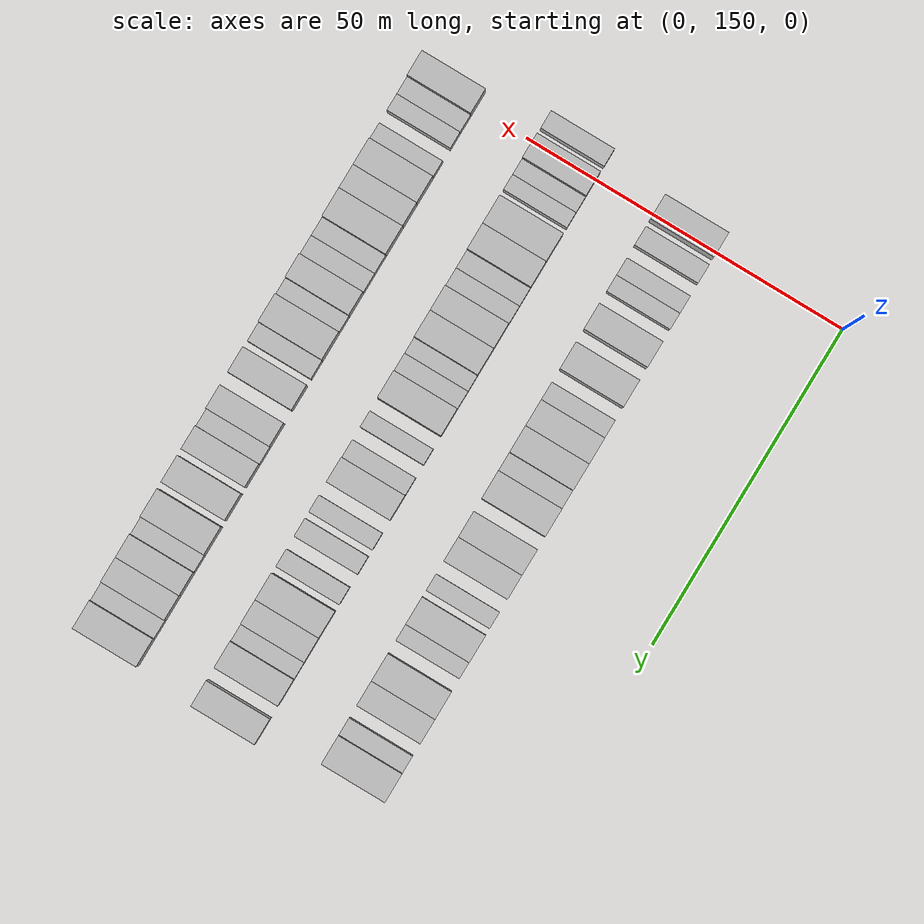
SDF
<sdf version="1.6">
 <world name="default">
  <model name="building_87">
   <static>1</static>
   <pose>25.0000 149.1867 0 0.000000 0.000000 0.000000</pose>
   <link name="link">
    <pose>0 0 4.50 0 0 0</pose>
    <collision name="collision"><geometry><box><size>10.0000 3.8759 9.0000</size></box></geometry></collision>
    <visual name="visual">
     <cast_shadows>0</cast_shadows>
     <geometry><box><size>10.0000 3.8759 9.0000</size></box></geometry>
     <material>
      <script>
       <uri>model://HANNAS_wall/materials/scripts</uri>
       <uri>model://HANNAS_wall/materials/textures</uri>
       <name>vrc/HANNAS_wall</name>
      </script>
     </material>
    </visual>
   </link>
  </model>
  <model name="building_88">
   <static>1</static>
   <pose>25.0000 153.6048 0 0.000000 0.000000 0.000000</pose>
   <link name="link">
    <pose>0 0 3.00 0 0 0</pose>
    <collision name="collision"><geometry><box><size>10.0000 2.9603 6.0000</size></box></geometry></collision>
    <visual name="visual">
     <cast_shadows>0</cast_shadows>
     <geometry><box><size>10.0000 2.9603 6.0000</size></box></geometry>
     <material>
      <script>
       <uri>model://HANNAS_wall/materials/scripts</uri>
       <uri>model://HANNAS_wall/materials/textures</uri>
       <name>vrc/HANNAS_wall</name>
      </script>
     </material>
    </visual>
   </link>
  </model>
  <model name="building_89">
   <static>1</static>
   <pose>25.0000 158.4443 0 0.000000 0.000000 0.000000</pose>
   <link name="link">
    <pose>0 0 3.00 0 0 0</pose>
    <collision name="collision"><geometry><box><size>10.0000 2.7185 6.0000</size></box></geometry></collision>
    <visual name="visual">
     <cast_shadows>0</cast_shadows>
     <geometry><box><size>10.0000 2.7185 6.0000</size></box></geometry>
     <material>
      <script>
       <uri>model://HANNAS_wall/materials/scripts</uri>
       <uri>model://HANNAS_wall/materials/textures</uri>
       <name>vrc/HANNAS_wall</name>
      </script>
     </material>
    </visual>
   </link>
  </model>
  <model name="building_90">
   <static>1</static>
   <pose>25.0000 161.0864 0 0.000000 0.000000 0.000000</pose>
   <link name="link">
    <pose>0 0 3.00 0 0 0</pose>
    <collision name="collision"><geometry><box><size>10.0000 2.5657 6.0000</size></box></geometry></collision>
    <visual name="visual">
     <cast_shadows>0</cast_shadows>
     <geometry><box><size>10.0000 2.5657 6.0000</size></box></geometry>
     <material>
      <script>
       <uri>model://HANNAS_wall/materials/scripts</uri>
       <uri>model://HANNAS_wall/materials/textures</uri>
       <name>vrc/HANNAS_wall</name>
      </script>
     </material>
    </visual>
   </link>
  </model>
  <model name="building_91">
   <static>1</static>
   <pose>25.0000 166.3972 0 0.000000 0.000000 0.000000</pose>
   <link name="link">
    <pose>0 0 4.50 0 0 0</pose>
    <collision name="collision"><geometry><box><size>10.0000 4.0559 9.0000</size></box></geometry></collision>
    <visual name="visual">
     <cast_shadows>0</cast_shadows>
     <geometry><box><size>10.0000 4.0559 9.0000</size></box></geometry>
     <material>
      <script>
       <uri>model://HANNAS_wall/materials/scripts</uri>
       <uri>model://HANNAS_wall/materials/textures</uri>
       <name>vrc/HANNAS_wall</name>
      </script>
     </material>
    </visual>
   </link>
  </model>
  <model name="building_92">
   <static>1</static>
   <pose>25.0000 172.5438 0 0.000000 0.000000 0.000000</pose>
   <link name="link">
    <pose>0 0 4.50 0 0 0</pose>
    <collision name="collision"><geometry><box><size>10.0000 4.2373 9.0000</size></box></geometry></collision>
    <visual name="visual">
     <cast_shadows>0</cast_shadows>
     <geometry><box><size>10.0000 4.2373 9.0000</size></box></geometry>
     <material>
      <script>
       <uri>model://HANNAS_wall/materials/scripts</uri>
       <uri>model://HANNAS_wall/materials/textures</uri>
       <name>vrc/HANNAS_wall</name>
      </script>
     </material>
    </visual>
   </link>
  </model>
  <model name="building_93">
   <static>1</static>
   <pose>25.0000 178.0784 0 0.000000 0.000000 0.000000</pose>
   <link name="link">
    <pose>0 0 3.00 0 0 0</pose>
    <collision name="collision"><geometry><box><size>10.0000 2.8318 6.0000</size></box></geometry></collision>
    <visual name="visual">
     <cast_shadows>0</cast_shadows>
     <geometry><box><size>10.0000 2.8318 6.0000</size></box></geometry>
     <material>
      <script>
       <uri>model://HANNAS_wall/materials/scripts</uri>
       <uri>model://HANNAS_wall/materials/textures</uri>
       <name>vrc/HANNAS_wall</name>
      </script>
     </material>
    </visual>
   </link>
  </model>
  <model name="building_94">
   <static>1</static>
   <pose>25.0000 181.5364 0 0.000000 0.000000 0.000000</pose>
   <link name="link">
    <pose>0 0 4.50 0 0 0</pose>
    <collision name="collision"><geometry><box><size>10.0000 4.0842 9.0000</size></box></geometry></collision>
    <visual name="visual">
     <cast_shadows>0</cast_shadows>
     <geometry><box><size>10.0000 4.0842 9.0000</size></box></geometry>
     <material>
      <script>
       <uri>model://HANNAS_wall/materials/scripts</uri>
       <uri>model://HANNAS_wall/materials/textures</uri>
       <name>vrc/HANNAS_wall</name>
      </script>
     </material>
    </visual>
   </link>
  </model>
  <model name="building_95">
   <static>1</static>
   <pose>25.0000 185.6593 0 0.000000 0.000000 0.000000</pose>
   <link name="link">
    <pose>0 0 4.50 0 0 0</pose>
    <collision name="collision"><geometry><box><size>10.0000 4.1616 9.0000</size></box></geometry></collision>
    <visual name="visual">
     <cast_shadows>0</cast_shadows>
     <geometry><box><size>10.0000 4.1616 9.0000</size></box></geometry>
     <material>
      <script>
       <uri>model://HANNAS_wall/materials/scripts</uri>
       <uri>model://HANNAS_wall/materials/textures</uri>
       <name>vrc/HANNAS_wall</name>
      </script>
     </material>
    </visual>
   </link>
  </model>
  <model name="building_96">
   <static>1</static>
   <pose>25.0000 189.1794 0 0.000000 0.000000 0.000000</pose>
   <link name="link">
    <pose>0 0 3.00 0 0 0</pose>
    <collision name="collision"><geometry><box><size>10.0000 2.8786 6.0000</size></box></geometry></collision>
    <visual name="visual">
     <cast_shadows>0</cast_shadows>
     <geometry><box><size>10.0000 2.8786 6.0000</size></box></geometry>
     <material>
      <script>
       <uri>model://HANNAS_wall/materials/scripts</uri>
       <uri>model://HANNAS_wall/materials/textures</uri>
       <name>vrc/HANNAS_wall</name>
      </script>
     </material>
    </visual>
   </link>
  </model>
  <model name="building_97">
   <static>1</static>
   <pose>25.0000 192.8146 0 0.000000 0.000000 0.000000</pose>
   <link name="link">
    <pose>0 0 4.50 0 0 0</pose>
    <collision name="collision"><geometry><box><size>10.0000 4.3917 9.0000</size></box></geometry></collision>
    <visual name="visual">
     <cast_shadows>0</cast_shadows>
     <geometry><box><size>10.0000 4.3917 9.0000</size></box></geometry>
     <material>
      <script>
       <uri>model://HANNAS_wall/materials/scripts</uri>
       <uri>model://HANNAS_wall/materials/textures</uri>
       <name>vrc/HANNAS_wall</name>
      </script>
     </material>
    </visual>
   </link>
  </model>
  <model name="building_98">
   <static>1</static>
   <pose>25.0000 199.0348 0 0.000000 0.000000 0.000000</pose>
   <link name="link">
    <pose>0 0 4.50 0 0 0</pose>
    <collision name="collision"><geometry><box><size>10.0000 4.0488 9.0000</size></box></geometry></collision>
    <visual name="visual">
     <cast_shadows>0</cast_shadows>
     <geometry><box><size>10.0000 4.0488 9.0000</size></box></geometry>
     <material>
      <script>
       <uri>model://HANNAS_wall/materials/scripts</uri>
       <uri>model://HANNAS_wall/materials/textures</uri>
       <name>vrc/HANNAS_wall</name>
      </script>
     </material>
    </visual>
   </link>
  </model>
  <model name="building_99">
   <static>1</static>
   <pose>25.0000 202.9499 0 0.000000 0.000000 0.000000</pose>
   <link name="link">
    <pose>0 0 4.50 0 0 0</pose>
    <collision name="collision"><geometry><box><size>10.0000 3.7814 9.0000</size></box></geometry></collision>
    <visual name="visual">
     <cast_shadows>0</cast_shadows>
     <geometry><box><size>10.0000 3.7814 9.0000</size></box></geometry>
     <material>
      <script>
       <uri>model://HANNAS_wall/materials/scripts</uri>
       <uri>model://HANNAS_wall/materials/textures</uri>
       <name>vrc/HANNAS_wall</name>
      </script>
     </material>
    </visual>
   </link>
  </model>
  <model name="building_100">
   <static>1</static>
   <pose>25.0000 208.1453 0 0.000000 0.000000 0.000000</pose>
   <link name="link">
    <pose>0 0 3.00 0 0 0</pose>
    <collision name="collision"><geometry><box><size>10.0000 2.6092 6.0000</size></box></geometry></collision>
    <visual name="visual">
     <cast_shadows>0</cast_shadows>
     <geometry><box><size>10.0000 2.6092 6.0000</size></box></geometry>
     <material>
      <script>
       <uri>model://HANNAS_wall/materials/scripts</uri>
       <uri>model://HANNAS_wall/materials/textures</uri>
       <name>vrc/HANNAS_wall</name>
      </script>
     </material>
    </visual>
   </link>
  </model>
  <model name="building_101">
   <static>1</static>
   <pose>25.0000 212.5987 0 0.000000 0.000000 0.000000</pose>
   <link name="link">
    <pose>0 0 4.50 0 0 0</pose>
    <collision name="collision"><geometry><box><size>10.0000 4.2976 9.0000</size></box></geometry></collision>
    <visual name="visual">
     <cast_shadows>0</cast_shadows>
     <geometry><box><size>10.0000 4.2976 9.0000</size></box></geometry>
     <material>
      <script>
       <uri>model://HANNAS_wall/materials/scripts</uri>
       <uri>model://HANNAS_wall/materials/textures</uri>
       <name>vrc/HANNAS_wall</name>
      </script>
     </material>
    </visual>
   </link>
  </model>
  <model name="building_102">
   <static>1</static>
   <pose>25.0000 216.0351 0 0.000000 0.000000 0.000000</pose>
   <link name="link">
    <pose>0 0 3.00 0 0 0</pose>
    <collision name="collision"><geometry><box><size>10.0000 2.5752 6.0000</size></box></geometry></collision>
    <visual name="visual">
     <cast_shadows>0</cast_shadows>
     <geometry><box><size>10.0000 2.5752 6.0000</size></box></geometry>
     <material>
      <script>
       <uri>model://HANNAS_wall/materials/scripts</uri>
       <uri>model://HANNAS_wall/materials/textures</uri>
       <name>vrc/HANNAS_wall</name>
      </script>
     </material>
    </visual>
   </link>
  </model>
  <model name="building_103">
   <static>1</static>
   <pose>25.0000 221.4794 0 0.000000 0.000000 0.000000</pose>
   <link name="link">
    <pose>0 0 4.50 0 0 0</pose>
    <collision name="collision"><geometry><box><size>10.0000 4.3134 9.0000</size></box></geometry></collision>
    <visual name="visual">
     <cast_shadows>0</cast_shadows>
     <geometry><box><size>10.0000 4.3134 9.0000</size></box></geometry>
     <material>
      <script>
       <uri>model://HANNAS_wall/materials/scripts</uri>
       <uri>model://HANNAS_wall/materials/textures</uri>
       <name>vrc/HANNAS_wall</name>
      </script>
     </material>
    </visual>
   </link>
  </model>
  <model name="building_104">
   <static>1</static>
   <pose>25.0000 225.5553 0 0.000000 0.000000 0.000000</pose>
   <link name="link">
    <pose>0 0 4.50 0 0 0</pose>
    <collision name="collision"><geometry><box><size>10.0000 3.8384 9.0000</size></box></geometry></collision>
    <visual name="visual">
     <cast_shadows>0</cast_shadows>
     <geometry><box><size>10.0000 3.8384 9.0000</size></box></geometry>
     <material>
      <script>
       <uri>model://HANNAS_wall/materials/scripts</uri>
       <uri>model://HANNAS_wall/materials/textures</uri>
       <name>vrc/HANNAS_wall</name>
      </script>
     </material>
    </visual>
   </link>
  </model>
  <model name="building_105">
   <static>1</static>
   <pose>25.0000 230.8181 0 0.000000 0.000000 0.000000</pose>
   <link name="link">
    <pose>0 0 3.00 0 0 0</pose>
    <collision name="collision"><geometry><box><size>10.0000 2.6873 6.0000</size></box></geometry></collision>
    <visual name="visual">
     <cast_shadows>0</cast_shadows>
     <geometry><box><size>10.0000 2.6873 6.0000</size></box></geometry>
     <material>
      <script>
       <uri>model://HANNAS_wall/materials/scripts</uri>
       <uri>model://HANNAS_wall/materials/textures</uri>
       <name>vrc/HANNAS_wall</name>
      </script>
     </material>
    </visual>
   </link>
  </model>
  <model name="building_106">
   <static>1</static>
   <pose>25.0000 234.4107 0 0.000000 0.000000 0.000000</pose>
   <link name="link">
    <pose>0 0 4.50 0 0 0</pose>
    <collision name="collision"><geometry><box><size>10.0000 4.4979 9.0000</size></box></geometry></collision>
    <visual name="visual">
     <cast_shadows>0</cast_shadows>
     <geometry><box><size>10.0000 4.4979 9.0000</size></box></geometry>
     <material>
      <script>
       <uri>model://HANNAS_wall/materials/scripts</uri>
       <uri>model://HANNAS_wall/materials/textures</uri>
       <name>vrc/HANNAS_wall</name>
      </script>
     </material>
    </visual>
   </link>
  </model>
  <model name="building_205">
   <static>1</static>
   <pose>44.0000 146.7441 0 0.000000 0.000000 0.000000</pose>
   <link name="link">
    <pose>0 0 3.00 0 0 0</pose>
    <collision name="collision"><geometry><box><size>10.0000 2.7660 6.0000</size></box></geometry></collision>
    <visual name="visual">
     <cast_shadows>0</cast_shadows>
     <geometry><box><size>10.0000 2.7660 6.0000</size></box></geometry>
     <material>
      <script>
       <uri>model://HANNAS_wall/materials/scripts</uri>
       <uri>model://HANNAS_wall/materials/textures</uri>
       <name>vrc/HANNAS_wall</name>
      </script>
     </material>
    </visual>
   </link>
  </model>
  <model name="building_206">
   <static>1</static>
   <pose>44.0000 151.0318 0 0.000000 0.000000 0.000000</pose>
   <link name="link">
    <pose>0 0 4.50 0 0 0</pose>
    <collision name="collision"><geometry><box><size>10.0000 3.8094 9.0000</size></box></geometry></collision>
    <visual name="visual">
     <cast_shadows>0</cast_shadows>
     <geometry><box><size>10.0000 3.8094 9.0000</size></box></geometry>
     <material>
      <script>
       <uri>model://HANNAS_wall/materials/scripts</uri>
       <uri>model://HANNAS_wall/materials/textures</uri>
       <name>vrc/HANNAS_wall</name>
      </script>
     </material>
    </visual>
   </link>
  </model>
  <model name="building_207">
   <static>1</static>
   <pose>44.0000 154.1809 0 0.000000 0.000000 0.000000</pose>
   <link name="link">
    <pose>0 0 3.00 0 0 0</pose>
    <collision name="collision"><geometry><box><size>10.0000 2.4887 6.0000</size></box></geometry></collision>
    <visual name="visual">
     <cast_shadows>0</cast_shadows>
     <geometry><box><size>10.0000 2.4887 6.0000</size></box></geometry>
     <material>
      <script>
       <uri>model://HANNAS_wall/materials/scripts</uri>
       <uri>model://HANNAS_wall/materials/textures</uri>
       <name>vrc/HANNAS_wall</name>
      </script>
     </material>
    </visual>
   </link>
  </model>
  <model name="building_208">
   <static>1</static>
   <pose>44.0000 156.6257 0 0.000000 0.000000 0.000000</pose>
   <link name="link">
    <pose>0 0 3.00 0 0 0</pose>
    <collision name="collision"><geometry><box><size>10.0000 2.4009 6.0000</size></box></geometry></collision>
    <visual name="visual">
     <cast_shadows>0</cast_shadows>
     <geometry><box><size>10.0000 2.4009 6.0000</size></box></geometry>
     <material>
      <script>
       <uri>model://HANNAS_wall/materials/scripts</uri>
       <uri>model://HANNAS_wall/materials/textures</uri>
       <name>vrc/HANNAS_wall</name>
      </script>
     </material>
    </visual>
   </link>
  </model>
  <model name="building_209">
   <static>1</static>
   <pose>44.0000 161.0472 0 0.000000 0.000000 0.000000</pose>
   <link name="link">
    <pose>0 0 4.50 0 0 0</pose>
    <collision name="collision"><geometry><box><size>10.0000 4.4419 9.0000</size></box></geometry></collision>
    <visual name="visual">
     <cast_shadows>0</cast_shadows>
     <geometry><box><size>10.0000 4.4419 9.0000</size></box></geometry>
     <material>
      <script>
       <uri>model://HANNAS_wall/materials/scripts</uri>
       <uri>model://HANNAS_wall/materials/textures</uri>
       <name>vrc/HANNAS_wall</name>
      </script>
     </material>
    </visual>
   </link>
  </model>
  <model name="building_210">
   <static>1</static>
   <pose>44.0000 165.2892 0 0.000000 0.000000 0.000000</pose>
   <link name="link">
    <pose>0 0 4.50 0 0 0</pose>
    <collision name="collision"><geometry><box><size>10.0000 4.0421 9.0000</size></box></geometry></collision>
    <visual name="visual">
     <cast_shadows>0</cast_shadows>
     <geometry><box><size>10.0000 4.0421 9.0000</size></box></geometry>
     <material>
      <script>
       <uri>model://HANNAS_wall/materials/scripts</uri>
       <uri>model://HANNAS_wall/materials/textures</uri>
       <name>vrc/HANNAS_wall</name>
      </script>
     </material>
    </visual>
   </link>
  </model>
  <model name="building_211">
   <static>1</static>
   <pose>44.0000 168.7323 0 0.000000 0.000000 0.000000</pose>
   <link name="link">
    <pose>0 0 3.00 0 0 0</pose>
    <collision name="collision"><geometry><box><size>10.0000 2.8443 6.0000</size></box></geometry></collision>
    <visual name="visual">
     <cast_shadows>0</cast_shadows>
     <geometry><box><size>10.0000 2.8443 6.0000</size></box></geometry>
     <material>
      <script>
       <uri>model://HANNAS_wall/materials/scripts</uri>
       <uri>model://HANNAS_wall/materials/textures</uri>
       <name>vrc/HANNAS_wall</name>
      </script>
     </material>
    </visual>
   </link>
  </model>
  <model name="building_212">
   <static>1</static>
   <pose>44.0000 171.5797 0 0.000000 0.000000 0.000000</pose>
   <link name="link">
    <pose>0 0 3.00 0 0 0</pose>
    <collision name="collision"><geometry><box><size>10.0000 2.8506 6.0000</size></box></geometry></collision>
    <visual name="visual">
     <cast_shadows>0</cast_shadows>
     <geometry><box><size>10.0000 2.8506 6.0000</size></box></geometry>
     <material>
      <script>
       <uri>model://HANNAS_wall/materials/scripts</uri>
       <uri>model://HANNAS_wall/materials/textures</uri>
       <name>vrc/HANNAS_wall</name>
      </script>
     </material>
    </visual>
   </link>
  </model>
  <model name="building_213">
   <static>1</static>
   <pose>44.0000 174.9610 0 0.000000 0.000000 0.000000</pose>
   <link name="link">
    <pose>0 0 4.50 0 0 0</pose>
    <collision name="collision"><geometry><box><size>10.0000 3.9120 9.0000</size></box></geometry></collision>
    <visual name="visual">
     <cast_shadows>0</cast_shadows>
     <geometry><box><size>10.0000 3.9120 9.0000</size></box></geometry>
     <material>
      <script>
       <uri>model://HANNAS_wall/materials/scripts</uri>
       <uri>model://HANNAS_wall/materials/textures</uri>
       <name>vrc/HANNAS_wall</name>
      </script>
     </material>
    </visual>
   </link>
  </model>
  <model name="building_214">
   <static>1</static>
   <pose>44.0000 179.0112 0 0.000000 0.000000 0.000000</pose>
   <link name="link">
    <pose>0 0 4.50 0 0 0</pose>
    <collision name="collision"><geometry><box><size>10.0000 4.1883 9.0000</size></box></geometry></collision>
    <visual name="visual">
     <cast_shadows>0</cast_shadows>
     <geometry><box><size>10.0000 4.1883 9.0000</size></box></geometry>
     <material>
      <script>
       <uri>model://HANNAS_wall/materials/scripts</uri>
       <uri>model://HANNAS_wall/materials/textures</uri>
       <name>vrc/HANNAS_wall</name>
      </script>
     </material>
    </visual>
   </link>
  </model>
  <model name="building_215">
   <static>1</static>
   <pose>44.0000 182.3445 0 0.000000 0.000000 0.000000</pose>
   <link name="link">
    <pose>0 0 3.00 0 0 0</pose>
    <collision name="collision"><geometry><box><size>10.0000 2.4782 6.0000</size></box></geometry></collision>
    <visual name="visual">
     <cast_shadows>0</cast_shadows>
     <geometry><box><size>10.0000 2.4782 6.0000</size></box></geometry>
     <material>
      <script>
       <uri>model://HANNAS_wall/materials/scripts</uri>
       <uri>model://HANNAS_wall/materials/textures</uri>
       <name>vrc/HANNAS_wall</name>
      </script>
     </material>
    </visual>
   </link>
  </model>
  <model name="building_216">
   <static>1</static>
   <pose>44.0000 184.9799 0 0.000000 0.000000 0.000000</pose>
   <link name="link">
    <pose>0 0 3.00 0 0 0</pose>
    <collision name="collision"><geometry><box><size>10.0000 2.7926 6.0000</size></box></geometry></collision>
    <visual name="visual">
     <cast_shadows>0</cast_shadows>
     <geometry><box><size>10.0000 2.7926 6.0000</size></box></geometry>
     <material>
      <script>
       <uri>model://HANNAS_wall/materials/scripts</uri>
       <uri>model://HANNAS_wall/materials/textures</uri>
       <name>vrc/HANNAS_wall</name>
      </script>
     </material>
    </visual>
   </link>
  </model>
  <model name="building_217">
   <static>1</static>
   <pose>44.0000 188.5200 0 0.000000 0.000000 0.000000</pose>
   <link name="link">
    <pose>0 0 4.50 0 0 0</pose>
    <collision name="collision"><geometry><box><size>10.0000 4.2876 9.0000</size></box></geometry></collision>
    <visual name="visual">
     <cast_shadows>0</cast_shadows>
     <geometry><box><size>10.0000 4.2876 9.0000</size></box></geometry>
     <material>
      <script>
       <uri>model://HANNAS_wall/materials/scripts</uri>
       <uri>model://HANNAS_wall/materials/textures</uri>
       <name>vrc/HANNAS_wall</name>
      </script>
     </material>
    </visual>
   </link>
  </model>
  <model name="building_218">
   <static>1</static>
   <pose>44.0000 193.9305 0 0.000000 0.000000 0.000000</pose>
   <link name="link">
    <pose>0 0 3.00 0 0 0</pose>
    <collision name="collision"><geometry><box><size>10.0000 2.5333 6.0000</size></box></geometry></collision>
    <visual name="visual">
     <cast_shadows>0</cast_shadows>
     <geometry><box><size>10.0000 2.5333 6.0000</size></box></geometry>
     <material>
      <script>
       <uri>model://HANNAS_wall/materials/scripts</uri>
       <uri>model://HANNAS_wall/materials/textures</uri>
       <name>vrc/HANNAS_wall</name>
      </script>
     </material>
    </visual>
   </link>
  </model>
  <model name="building_219">
   <static>1</static>
   <pose>44.0000 198.5917 0 0.000000 0.000000 0.000000</pose>
   <link name="link">
    <pose>0 0 3.00 0 0 0</pose>
    <collision name="collision"><geometry><box><size>10.0000 2.7890 6.0000</size></box></geometry></collision>
    <visual name="visual">
     <cast_shadows>0</cast_shadows>
     <geometry><box><size>10.0000 2.7890 6.0000</size></box></geometry>
     <material>
      <script>
       <uri>model://HANNAS_wall/materials/scripts</uri>
       <uri>model://HANNAS_wall/materials/textures</uri>
       <name>vrc/HANNAS_wall</name>
      </script>
     </material>
    </visual>
   </link>
  </model>
  <model name="building_220">
   <static>1</static>
   <pose>44.0000 201.9425 0 0.000000 0.000000 0.000000</pose>
   <link name="link">
    <pose>0 0 4.50 0 0 0</pose>
    <collision name="collision"><geometry><box><size>10.0000 3.9126 9.0000</size></box></geometry></collision>
    <visual name="visual">
     <cast_shadows>0</cast_shadows>
     <geometry><box><size>10.0000 3.9126 9.0000</size></box></geometry>
     <material>
      <script>
       <uri>model://HANNAS_wall/materials/scripts</uri>
       <uri>model://HANNAS_wall/materials/textures</uri>
       <name>vrc/HANNAS_wall</name>
      </script>
     </material>
    </visual>
   </link>
  </model>
  <model name="building_221">
   <static>1</static>
   <pose>44.0000 207.2332 0 0.000000 0.000000 0.000000</pose>
   <link name="link">
    <pose>0 0 3.00 0 0 0</pose>
    <collision name="collision"><geometry><box><size>10.0000 2.6689 6.0000</size></box></geometry></collision>
    <visual name="visual">
     <cast_shadows>0</cast_shadows>
     <geometry><box><size>10.0000 2.6689 6.0000</size></box></geometry>
     <material>
      <script>
       <uri>model://HANNAS_wall/materials/scripts</uri>
       <uri>model://HANNAS_wall/materials/textures</uri>
       <name>vrc/HANNAS_wall</name>
      </script>
     </material>
    </visual>
   </link>
  </model>
  <model name="building_222">
   <static>1</static>
   <pose>44.0000 210.9874 0 0.000000 0.000000 0.000000</pose>
   <link name="link">
    <pose>0 0 3.00 0 0 0</pose>
    <collision name="collision"><geometry><box><size>10.0000 2.8394 6.0000</size></box></geometry></collision>
    <visual name="visual">
     <cast_shadows>0</cast_shadows>
     <geometry><box><size>10.0000 2.8394 6.0000</size></box></geometry>
     <material>
      <script>
       <uri>model://HANNAS_wall/materials/scripts</uri>
       <uri>model://HANNAS_wall/materials/textures</uri>
       <name>vrc/HANNAS_wall</name>
      </script>
     </material>
    </visual>
   </link>
  </model>
  <model name="building_223">
   <static>1</static>
   <pose>44.0000 215.7879 0 0.000000 0.000000 0.000000</pose>
   <link name="link">
    <pose>0 0 3.00 0 0 0</pose>
    <collision name="collision"><geometry><box><size>10.0000 2.7617 6.0000</size></box></geometry></collision>
    <visual name="visual">
     <cast_shadows>0</cast_shadows>
     <geometry><box><size>10.0000 2.7617 6.0000</size></box></geometry>
     <material>
      <script>
       <uri>model://HANNAS_wall/materials/scripts</uri>
       <uri>model://HANNAS_wall/materials/textures</uri>
       <name>vrc/HANNAS_wall</name>
      </script>
     </material>
    </visual>
   </link>
  </model>
  <model name="building_224">
   <static>1</static>
   <pose>44.0000 220.2713 0 0.000000 0.000000 0.000000</pose>
   <link name="link">
    <pose>0 0 4.50 0 0 0</pose>
    <collision name="collision"><geometry><box><size>10.0000 4.2050 9.0000</size></box></geometry></collision>
    <visual name="visual">
     <cast_shadows>0</cast_shadows>
     <geometry><box><size>10.0000 4.2050 9.0000</size></box></geometry>
     <material>
      <script>
       <uri>model://HANNAS_wall/materials/scripts</uri>
       <uri>model://HANNAS_wall/materials/textures</uri>
       <name>vrc/HANNAS_wall</name>
      </script>
     </material>
    </visual>
   </link>
  </model>
  <model name="building_225">
   <static>1</static>
   <pose>44.0000 224.2787 0 0.000000 0.000000 0.000000</pose>
   <link name="link">
    <pose>0 0 4.50 0 0 0</pose>
    <collision name="collision"><geometry><box><size>10.0000 3.8098 9.0000</size></box></geometry></collision>
    <visual name="visual">
     <cast_shadows>0</cast_shadows>
     <geometry><box><size>10.0000 3.8098 9.0000</size></box></geometry>
     <material>
      <script>
       <uri>model://HANNAS_wall/materials/scripts</uri>
       <uri>model://HANNAS_wall/materials/textures</uri>
       <name>vrc/HANNAS_wall</name>
      </script>
     </material>
    </visual>
   </link>
  </model>
  <model name="building_226">
   <static>1</static>
   <pose>44.0000 227.5212 0 0.000000 0.000000 0.000000</pose>
   <link name="link">
    <pose>0 0 3.00 0 0 0</pose>
    <collision name="collision"><geometry><box><size>10.0000 2.6750 6.0000</size></box></geometry></collision>
    <visual name="visual">
     <cast_shadows>0</cast_shadows>
     <geometry><box><size>10.0000 2.6750 6.0000</size></box></geometry>
     <material>
      <script>
       <uri>model://HANNAS_wall/materials/scripts</uri>
       <uri>model://HANNAS_wall/materials/textures</uri>
       <name>vrc/HANNAS_wall</name>
      </script>
     </material>
    </visual>
   </link>
  </model>
  <model name="building_227">
   <static>1</static>
   <pose>44.0000 230.9414 0 0.000000 0.000000 0.000000</pose>
   <link name="link">
    <pose>0 0 4.50 0 0 0</pose>
    <collision name="collision"><geometry><box><size>10.0000 4.1654 9.0000</size></box></geometry></collision>
    <visual name="visual">
     <cast_shadows>0</cast_shadows>
     <geometry><box><size>10.0000 4.1654 9.0000</size></box></geometry>
     <material>
      <script>
       <uri>model://HANNAS_wall/materials/scripts</uri>
       <uri>model://HANNAS_wall/materials/textures</uri>
       <name>vrc/HANNAS_wall</name>
      </script>
     </material>
    </visual>
   </link>
  </model>
  <model name="building_228">
   <static>1</static>
   <pose>44.0000 237.0414 0 0.000000 0.000000 0.000000</pose>
   <link name="link">
    <pose>0 0 4.50 0 0 0</pose>
    <collision name="collision"><geometry><box><size>10.0000 4.0348 9.0000</size></box></geometry></collision>
    <visual name="visual">
     <cast_shadows>0</cast_shadows>
     <geometry><box><size>10.0000 4.0348 9.0000</size></box></geometry>
     <material>
      <script>
       <uri>model://HANNAS_wall/materials/scripts</uri>
       <uri>model://HANNAS_wall/materials/textures</uri>
       <name>vrc/HANNAS_wall</name>
      </script>
     </material>
    </visual>
   </link>
  </model>
  <model name="building_316">
   <static>1</static>
   <pose>63.0000 149.5399 0 0.000000 0.000000 0.000000</pose>
   <link name="link">
    <pose>0 0 4.50 0 0 0</pose>
    <collision name="collision"><geometry><box><size>10.0000 3.8835 9.0000</size></box></geometry></collision>
    <visual name="visual">
     <cast_shadows>0</cast_shadows>
     <geometry><box><size>10.0000 3.8835 9.0000</size></box></geometry>
     <material>
      <script>
       <uri>model://HANNAS_wall/materials/scripts</uri>
       <uri>model://HANNAS_wall/materials/textures</uri>
       <name>vrc/HANNAS_wall</name>
      </script>
     </material>
    </visual>
   </link>
  </model>
  <model name="building_317">
   <static>1</static>
   <pose>63.0000 152.8363 0 0.000000 0.000000 0.000000</pose>
   <link name="link">
    <pose>0 0 3.00 0 0 0</pose>
    <collision name="collision"><geometry><box><size>10.0000 2.7093 6.0000</size></box></geometry></collision>
    <visual name="visual">
     <cast_shadows>0</cast_shadows>
     <geometry><box><size>10.0000 2.7093 6.0000</size></box></geometry>
     <material>
      <script>
       <uri>model://HANNAS_wall/materials/scripts</uri>
       <uri>model://HANNAS_wall/materials/textures</uri>
       <name>vrc/HANNAS_wall</name>
      </script>
     </material>
    </visual>
   </link>
  </model>
  <model name="building_318">
   <static>1</static>
   <pose>63.0000 155.4752 0 0.000000 0.000000 0.000000</pose>
   <link name="link">
    <pose>0 0 3.00 0 0 0</pose>
    <collision name="collision"><geometry><box><size>10.0000 2.5686 6.0000</size></box></geometry></collision>
    <visual name="visual">
     <cast_shadows>0</cast_shadows>
     <geometry><box><size>10.0000 2.5686 6.0000</size></box></geometry>
     <material>
      <script>
       <uri>model://HANNAS_wall/materials/scripts</uri>
       <uri>model://HANNAS_wall/materials/textures</uri>
       <name>vrc/HANNAS_wall</name>
      </script>
     </material>
    </visual>
   </link>
  </model>
  <model name="building_319">
   <static>1</static>
   <pose>63.0000 160.0411 0 0.000000 0.000000 0.000000</pose>
   <link name="link">
    <pose>0 0 3.00 0 0 0</pose>
    <collision name="collision"><geometry><box><size>10.0000 2.5631 6.0000</size></box></geometry></collision>
    <visual name="visual">
     <cast_shadows>0</cast_shadows>
     <geometry><box><size>10.0000 2.5631 6.0000</size></box></geometry>
     <material>
      <script>
       <uri>model://HANNAS_wall/materials/scripts</uri>
       <uri>model://HANNAS_wall/materials/textures</uri>
       <name>vrc/HANNAS_wall</name>
      </script>
     </material>
    </visual>
   </link>
  </model>
  <model name="building_320">
   <static>1</static>
   <pose>63.0000 163.4136 0 0.000000 0.000000 0.000000</pose>
   <link name="link">
    <pose>0 0 4.50 0 0 0</pose>
    <collision name="collision"><geometry><box><size>10.0000 4.1818 9.0000</size></box></geometry></collision>
    <visual name="visual">
     <cast_shadows>0</cast_shadows>
     <geometry><box><size>10.0000 4.1818 9.0000</size></box></geometry>
     <material>
      <script>
       <uri>model://HANNAS_wall/materials/scripts</uri>
       <uri>model://HANNAS_wall/materials/textures</uri>
       <name>vrc/HANNAS_wall</name>
      </script>
     </material>
    </visual>
   </link>
  </model>
  <model name="building_321">
   <static>1</static>
   <pose>63.0000 167.3397 0 0.000000 0.000000 0.000000</pose>
   <link name="link">
    <pose>0 0 4.50 0 0 0</pose>
    <collision name="collision"><geometry><box><size>10.0000 3.6705 9.0000</size></box></geometry></collision>
    <visual name="visual">
     <cast_shadows>0</cast_shadows>
     <geometry><box><size>10.0000 3.6705 9.0000</size></box></geometry>
     <material>
      <script>
       <uri>model://HANNAS_wall/materials/scripts</uri>
       <uri>model://HANNAS_wall/materials/textures</uri>
       <name>vrc/HANNAS_wall</name>
      </script>
     </material>
    </visual>
   </link>
  </model>
  <model name="building_322">
   <static>1</static>
   <pose>63.0000 171.3969 0 0.000000 0.000000 0.000000</pose>
   <link name="link">
    <pose>0 0 4.50 0 0 0</pose>
    <collision name="collision"><geometry><box><size>10.0000 4.4439 9.0000</size></box></geometry></collision>
    <visual name="visual">
     <cast_shadows>0</cast_shadows>
     <geometry><box><size>10.0000 4.4439 9.0000</size></box></geometry>
     <material>
      <script>
       <uri>model://HANNAS_wall/materials/scripts</uri>
       <uri>model://HANNAS_wall/materials/textures</uri>
       <name>vrc/HANNAS_wall</name>
      </script>
     </material>
    </visual>
   </link>
  </model>
  <model name="building_323">
   <static>1</static>
   <pose>63.0000 175.0580 0 0.000000 0.000000 0.000000</pose>
   <link name="link">
    <pose>0 0 3.00 0 0 0</pose>
    <collision name="collision"><geometry><box><size>10.0000 2.8781 6.0000</size></box></geometry></collision>
    <visual name="visual">
     <cast_shadows>0</cast_shadows>
     <geometry><box><size>10.0000 2.8781 6.0000</size></box></geometry>
     <material>
      <script>
       <uri>model://HANNAS_wall/materials/scripts</uri>
       <uri>model://HANNAS_wall/materials/textures</uri>
       <name>vrc/HANNAS_wall</name>
      </script>
     </material>
    </visual>
   </link>
  </model>
  <model name="building_324">
   <static>1</static>
   <pose>63.0000 177.9933 0 0.000000 0.000000 0.000000</pose>
   <link name="link">
    <pose>0 0 3.00 0 0 0</pose>
    <collision name="collision"><geometry><box><size>10.0000 2.9926 6.0000</size></box></geometry></collision>
    <visual name="visual">
     <cast_shadows>0</cast_shadows>
     <geometry><box><size>10.0000 2.9926 6.0000</size></box></geometry>
     <material>
      <script>
       <uri>model://HANNAS_wall/materials/scripts</uri>
       <uri>model://HANNAS_wall/materials/textures</uri>
       <name>vrc/HANNAS_wall</name>
      </script>
     </material>
    </visual>
   </link>
  </model>
  <model name="building_325">
   <static>1</static>
   <pose>63.0000 181.3403 0 0.000000 0.000000 0.000000</pose>
   <link name="link">
    <pose>0 0 4.50 0 0 0</pose>
    <collision name="collision"><geometry><box><size>10.0000 3.7012 9.0000</size></box></geometry></collision>
    <visual name="visual">
     <cast_shadows>0</cast_shadows>
     <geometry><box><size>10.0000 3.7012 9.0000</size></box></geometry>
     <material>
      <script>
       <uri>model://HANNAS_wall/materials/scripts</uri>
       <uri>model://HANNAS_wall/materials/textures</uri>
       <name>vrc/HANNAS_wall</name>
      </script>
     </material>
    </visual>
   </link>
  </model>
  <model name="building_326">
   <static>1</static>
   <pose>63.0000 184.4805 0 0.000000 0.000000 0.000000</pose>
   <link name="link">
    <pose>0 0 3.00 0 0 0</pose>
    <collision name="collision"><geometry><box><size>10.0000 2.5793 6.0000</size></box></geometry></collision>
    <visual name="visual">
     <cast_shadows>0</cast_shadows>
     <geometry><box><size>10.0000 2.5793 6.0000</size></box></geometry>
     <material>
      <script>
       <uri>model://HANNAS_wall/materials/scripts</uri>
       <uri>model://HANNAS_wall/materials/textures</uri>
       <name>vrc/HANNAS_wall</name>
      </script>
     </material>
    </visual>
   </link>
  </model>
  <model name="building_327">
   <static>1</static>
   <pose>63.0000 187.9863 0 0.000000 0.000000 0.000000</pose>
   <link name="link">
    <pose>0 0 4.50 0 0 0</pose>
    <collision name="collision"><geometry><box><size>10.0000 4.4324 9.0000</size></box></geometry></collision>
    <visual name="visual">
     <cast_shadows>0</cast_shadows>
     <geometry><box><size>10.0000 4.4324 9.0000</size></box></geometry>
     <material>
      <script>
       <uri>model://HANNAS_wall/materials/scripts</uri>
       <uri>model://HANNAS_wall/materials/textures</uri>
       <name>vrc/HANNAS_wall</name>
      </script>
     </material>
    </visual>
   </link>
  </model>
  <model name="building_328">
   <static>1</static>
   <pose>63.0000 191.6639 0 0.000000 0.000000 0.000000</pose>
   <link name="link">
    <pose>0 0 3.00 0 0 0</pose>
    <collision name="collision"><geometry><box><size>10.0000 2.9228 6.0000</size></box></geometry></collision>
    <visual name="visual">
     <cast_shadows>0</cast_shadows>
     <geometry><box><size>10.0000 2.9228 6.0000</size></box></geometry>
     <material>
      <script>
       <uri>model://HANNAS_wall/materials/scripts</uri>
       <uri>model://HANNAS_wall/materials/textures</uri>
       <name>vrc/HANNAS_wall</name>
      </script>
     </material>
    </visual>
   </link>
  </model>
  <model name="building_329">
   <static>1</static>
   <pose>63.0000 196.1132 0 0.000000 0.000000 0.000000</pose>
   <link name="link">
    <pose>0 0 4.50 0 0 0</pose>
    <collision name="collision"><geometry><box><size>10.0000 3.9759 9.0000</size></box></geometry></collision>
    <visual name="visual">
     <cast_shadows>0</cast_shadows>
     <geometry><box><size>10.0000 3.9759 9.0000</size></box></geometry>
     <material>
      <script>
       <uri>model://HANNAS_wall/materials/scripts</uri>
       <uri>model://HANNAS_wall/materials/textures</uri>
       <name>vrc/HANNAS_wall</name>
      </script>
     </material>
    </visual>
   </link>
  </model>
  <model name="building_330">
   <static>1</static>
   <pose>63.0000 201.9501 0 0.000000 0.000000 0.000000</pose>
   <link name="link">
    <pose>0 0 4.50 0 0 0</pose>
    <collision name="collision"><geometry><box><size>10.0000 3.6979 9.0000</size></box></geometry></collision>
    <visual name="visual">
     <cast_shadows>0</cast_shadows>
     <geometry><box><size>10.0000 3.6979 9.0000</size></box></geometry>
     <material>
      <script>
       <uri>model://HANNAS_wall/materials/scripts</uri>
       <uri>model://HANNAS_wall/materials/textures</uri>
       <name>vrc/HANNAS_wall</name>
      </script>
     </material>
    </visual>
   </link>
  </model>
  <model name="building_331">
   <static>1</static>
   <pose>63.0000 205.1589 0 0.000000 0.000000 0.000000</pose>
   <link name="link">
    <pose>0 0 3.00 0 0 0</pose>
    <collision name="collision"><geometry><box><size>10.0000 2.7197 6.0000</size></box></geometry></collision>
    <visual name="visual">
     <cast_shadows>0</cast_shadows>
     <geometry><box><size>10.0000 2.7197 6.0000</size></box></geometry>
     <material>
      <script>
       <uri>model://HANNAS_wall/materials/scripts</uri>
       <uri>model://HANNAS_wall/materials/textures</uri>
       <name>vrc/HANNAS_wall</name>
      </script>
     </material>
    </visual>
   </link>
  </model>
  <model name="building_332">
   <static>1</static>
   <pose>63.0000 208.3538 0 0.000000 0.000000 0.000000</pose>
   <link name="link">
    <pose>0 0 4.50 0 0 0</pose>
    <collision name="collision"><geometry><box><size>10.0000 3.6703 9.0000</size></box></geometry></collision>
    <visual name="visual">
     <cast_shadows>0</cast_shadows>
     <geometry><box><size>10.0000 3.6703 9.0000</size></box></geometry>
     <material>
      <script>
       <uri>model://HANNAS_wall/materials/scripts</uri>
       <uri>model://HANNAS_wall/materials/textures</uri>
       <name>vrc/HANNAS_wall</name>
      </script>
     </material>
    </visual>
   </link>
  </model>
  <model name="building_333">
   <static>1</static>
   <pose>63.0000 213.2965 0 0.000000 0.000000 0.000000</pose>
   <link name="link">
    <pose>0 0 4.50 0 0 0</pose>
    <collision name="collision"><geometry><box><size>10.0000 4.2152 9.0000</size></box></geometry></collision>
    <visual name="visual">
     <cast_shadows>0</cast_shadows>
     <geometry><box><size>10.0000 4.2152 9.0000</size></box></geometry>
     <material>
      <script>
       <uri>model://HANNAS_wall/materials/scripts</uri>
       <uri>model://HANNAS_wall/materials/textures</uri>
       <name>vrc/HANNAS_wall</name>
      </script>
     </material>
    </visual>
   </link>
  </model>
  <model name="building_334">
   <static>1</static>
   <pose>63.0000 218.6087 0 0.000000 0.000000 0.000000</pose>
   <link name="link">
    <pose>0 0 4.50 0 0 0</pose>
    <collision name="collision"><geometry><box><size>10.0000 4.4091 9.0000</size></box></geometry></collision>
    <visual name="visual">
     <cast_shadows>0</cast_shadows>
     <geometry><box><size>10.0000 4.4091 9.0000</size></box></geometry>
     <material>
      <script>
       <uri>model://HANNAS_wall/materials/scripts</uri>
       <uri>model://HANNAS_wall/materials/textures</uri>
       <name>vrc/HANNAS_wall</name>
      </script>
     </material>
    </visual>
   </link>
  </model>
  <model name="building_335">
   <static>1</static>
   <pose>63.0000 222.1749 0 0.000000 0.000000 0.000000</pose>
   <link name="link">
    <pose>0 0 3.00 0 0 0</pose>
    <collision name="collision"><geometry><box><size>10.0000 2.7234 6.0000</size></box></geometry></collision>
    <visual name="visual">
     <cast_shadows>0</cast_shadows>
     <geometry><box><size>10.0000 2.7234 6.0000</size></box></geometry>
     <material>
      <script>
       <uri>model://HANNAS_wall/materials/scripts</uri>
       <uri>model://HANNAS_wall/materials/textures</uri>
       <name>vrc/HANNAS_wall</name>
      </script>
     </material>
    </visual>
   </link>
  </model>
  <model name="building_336">
   <static>1</static>
   <pose>63.0000 225.3641 0 0.000000 0.000000 0.000000</pose>
   <link name="link">
    <pose>0 0 4.50 0 0 0</pose>
    <collision name="collision"><geometry><box><size>10.0000 3.6552 9.0000</size></box></geometry></collision>
    <visual name="visual">
     <cast_shadows>0</cast_shadows>
     <geometry><box><size>10.0000 3.6552 9.0000</size></box></geometry>
     <material>
      <script>
       <uri>model://HANNAS_wall/materials/scripts</uri>
       <uri>model://HANNAS_wall/materials/textures</uri>
       <name>vrc/HANNAS_wall</name>
      </script>
     </material>
    </visual>
   </link>
  </model>
  <model name="building_337">
   <static>1</static>
   <pose>63.0000 229.1221 0 0.000000 0.000000 0.000000</pose>
   <link name="link">
    <pose>0 0 4.50 0 0 0</pose>
    <collision name="collision"><geometry><box><size>10.0000 3.8608 9.0000</size></box></geometry></collision>
    <visual name="visual">
     <cast_shadows>0</cast_shadows>
     <geometry><box><size>10.0000 3.8608 9.0000</size></box></geometry>
     <material>
      <script>
       <uri>model://HANNAS_wall/materials/scripts</uri>
       <uri>model://HANNAS_wall/materials/textures</uri>
       <name>vrc/HANNAS_wall</name>
      </script>
     </material>
    </visual>
   </link>
  </model>
  <model name="building_338">
   <static>1</static>
   <pose>63.0000 232.5086 0 0.000000 0.000000 0.000000</pose>
   <link name="link">
    <pose>0 0 3.00 0 0 0</pose>
    <collision name="collision"><geometry><box><size>10.0000 2.9122 6.0000</size></box></geometry></collision>
    <visual name="visual">
     <cast_shadows>0</cast_shadows>
     <geometry><box><size>10.0000 2.9122 6.0000</size></box></geometry>
     <material>
      <script>
       <uri>model://HANNAS_wall/materials/scripts</uri>
       <uri>model://HANNAS_wall/materials/textures</uri>
       <name>vrc/HANNAS_wall</name>
      </script>
     </material>
    </visual>
   </link>
  </model>
  <model name="building_339">
   <static>1</static>
   <pose>63.0000 236.1582 0 0.000000 0.000000 0.000000</pose>
   <link name="link">
    <pose>0 0 4.50 0 0 0</pose>
    <collision name="collision"><geometry><box><size>10.0000 4.3871 9.0000</size></box></geometry></collision>
    <visual name="visual">
     <cast_shadows>0</cast_shadows>
     <geometry><box><size>10.0000 4.3871 9.0000</size></box></geometry>
     <material>
      <script>
       <uri>model://HANNAS_wall/materials/scripts</uri>
       <uri>model://HANNAS_wall/materials/textures</uri>
       <name>vrc/HANNAS_wall</name>
      </script>
     </material>
    </visual>
   </link>
  </model>
 </world>
</sdf>
